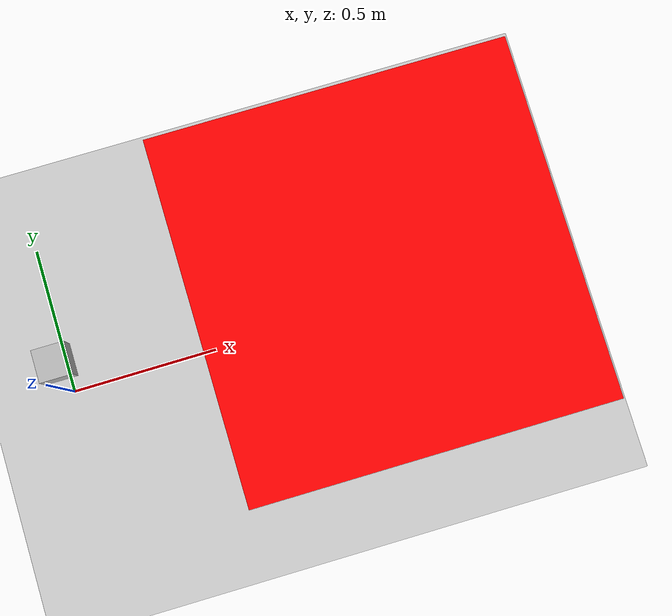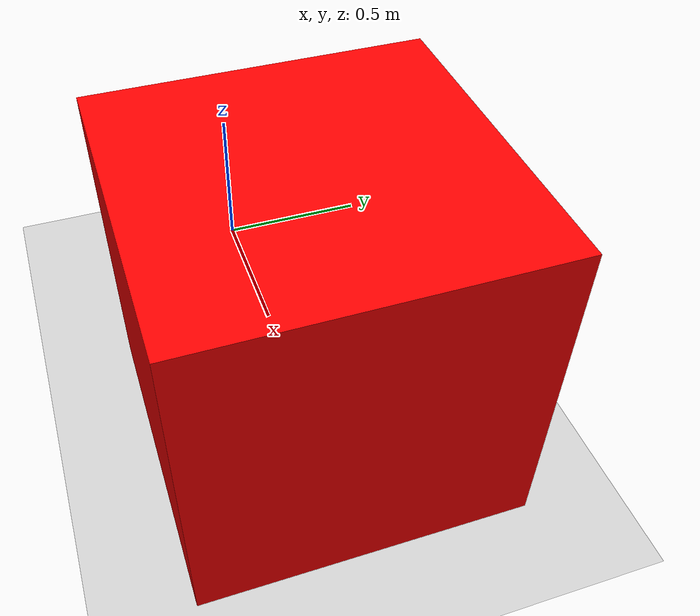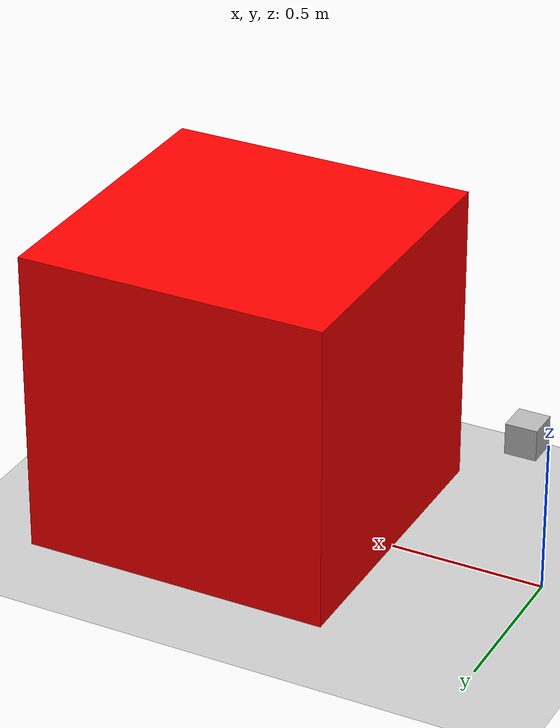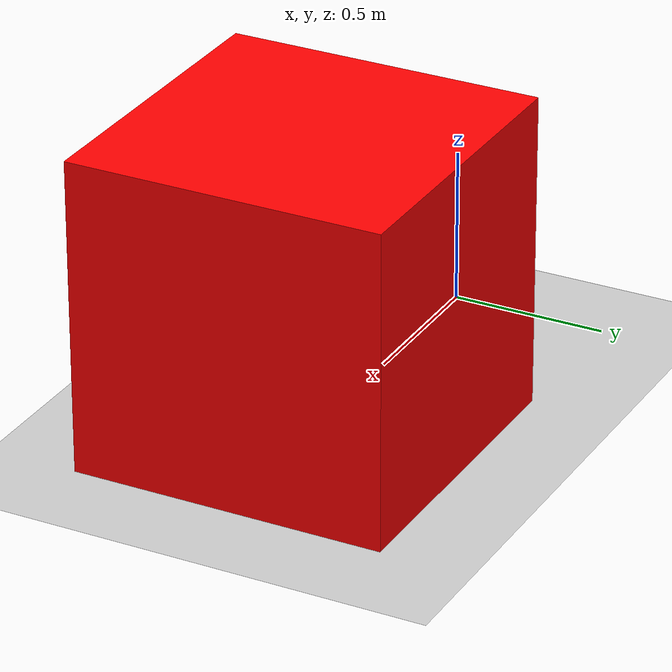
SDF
<?xml version="1.0" ?>
<!--
  Note: For now, this file must be loaded from ign-gazebo's root folder so the
  mesh's relative path is correct.
-->
<sdf version="1.9">
  <world name="gpu_lidar_sensor">
    <physics name="1ms" type="ode">
      <max_step_size>0.001</max_step_size>
      <real_time_factor>0</real_time_factor>
    </physics>
    <plugin
      filename="ignition-gazebo-physics-system"
      name="ignition::gazebo::systems::Physics">
    </plugin>
    <plugin
      filename="ignition-gazebo-sensors-system"
      name="ignition::gazebo::systems::Sensors">
      <render_engine>ogre2</render_engine>
    </plugin>
    <light type="directional" name="sun">
      <cast_shadows>true</cast_shadows>
      <pose>0 0 10 0 0 0</pose>
      <diffuse>0.8 0.8 0.8 1</diffuse>
      <specular>0.2 0.2 0.2 1</specular>
      <attenuation>
        <range>1000</range>
        <constant>0.9</constant>
        <linear>0.01</linear>
        <quadratic>0.001</quadratic>
      </attenuation>
      <direction>-0.5 0.1 -0.9</direction>
    </light>

    <model name="ground_plane">
      <static>true</static>
      <link name="link">
        <collision name="collision">
          <geometry>
            <box>
              <size>20 20 0.1</size>
            </box>
          </geometry>
        </collision>
        <visual name="visual">
          <geometry>
            <plane>
              <normal>0 0 1</normal>
              <size>100 100</size>
            </plane>
          </geometry>
          <material>
            <ambient>0.8 0.8 0.8 1</ambient>
            <diffuse>0.8 0.8 0.8 1</diffuse>
            <specular>0.8 0.8 0.8 1</specular>
          </material>
        </visual>
      </link>
    </model>

    <model name="box">
      <pose>1 0 0.5 0 0 0</pose>
      <link name="box_link">
        <inertial>
          <inertia>
            <ixx>1</ixx>
            <ixy>0</ixy>
            <ixz>0</ixz>
            <iyy>1</iyy>
            <iyz>0</iyz>
            <izz>1</izz>
          </inertia>
          <mass>1.0</mass>
        </inertial>
        <collision name="box_collision">
          <geometry>
            <box>
              <size>1 1 1</size>
            </box>
          </geometry>
        </collision>

        <visual name="box_visual">
          <geometry>
            <box>
              <size>1 1 1</size>
            </box>
          </geometry>
          <material>
            <ambient>1 0 0 1</ambient>
            <diffuse>1 0 0 1</diffuse>
            <specular>1 0 0 1</specular>
          </material>
        </visual>
      </link>
    </model>

    <model name="gpu_lidar">
        <plugin filename="/movai_ign_plugins/libMovaiLidar.so" name="ignition::gazebo::systems::MovaiLidar">
        <cam_topic_name>something</cam_topic_name>
        </plugin>
      <pose>0 0 0.5 0 0 0.0 </pose>
      <link name="gpu_lidar_link">
        <pose>0.05 0.05 0.05 0 0 0</pose>
        <inertial>
          <mass>0.1</mass>
          <inertia>
            <ixx>0.000166667</ixx>
            <iyy>0.000166667</iyy>
            <izz>0.000166667</izz>
          </inertia>
        </inertial>
        <collision name="collision">
          <geometry>
            <box>
              <size>0.1 0.1 0.1</size>
            </box>
          </geometry>
        </collision>
        <visual name="visual">
          <geometry>
            <box>
              <size>0.1 0.1 0.1</size>
            </box>
          </geometry>
        </visual>
        <sensor name="scan_omni" type="gpu_lidar">
            <topic>lidar</topic>
            <update_rate>10</update_rate>
            <always_on>1</always_on>
            <lidar>
             <scan>
                <horizontal>
                    <!-- Real samples value is 1800 -->
                    <samples>2048</samples>
                    <resolution>1</resolution>
                    <min_angle>-3.141592654</min_angle>
                    <max_angle>3.141592654</max_angle>
                </horizontal>
                <vertical>
                    <samples>16</samples>
                    <resolution>1</resolution>
                    <min_angle>-0.261799388</min_angle>
                    <max_angle>0.261799388</max_angle>
                </vertical>
             </scan>
             <range>
                <min>0.2</min>
                <max>100.0</max>
                <resolution>0.01</resolution>
             </range>
            </lidar>
      </sensor>
      <sensor name="camera_front_right" type="camera">
        <pose>0.0 0 0.0 0 0 -0.7854</pose>
        <update_rate>2</update_rate>
        <always_on>1</always_on>
        <ignition_frame_id>scan_omni</ignition_frame_id>
        <camera>
          <horizontal_fov>1.59</horizontal_fov>
          <image>
            <width>512</width>
            <height>200</height>
          </image>
          <clip>
            <near>0.05</near>
            <far>200</far>
          </clip>
        </camera>
      </sensor>
      <sensor name="camera_front_left" type="camera">
        <pose>0.0 0 0.0 0 0 0.7854</pose>
        <update_rate>2</update_rate>
        <always_on>1</always_on>
        <ignition_frame_id>scan_omni</ignition_frame_id>
        <camera>
          <horizontal_fov>1.59</horizontal_fov>
          <image>
            <width>512</width>
            <height>200</height>
          </image>
          <clip>
            <near>0.05</near>
            <far>200</far>
          </clip>
        </camera>
      </sensor>
      <sensor name="camera_back_right" type="camera">
        <pose>0.0 0 0.0 0 0 -2.3562</pose>
        <update_rate>2</update_rate>
        <always_on>1</always_on>
        <ignition_frame_id>scan_omni</ignition_frame_id>
        <camera>
          <horizontal_fov>1.59</horizontal_fov>
          <image>
            <width>512</width>
            <height>200</height>
          </image>
          <clip>
            <near>0.05</near>
            <far>200</far>
          </clip>
        </camera>
      </sensor>
      <sensor name="camera_back_left" type="camera">
        <pose>0.0 0 0.0 0 0 2.3562</pose>
        <update_rate>2</update_rate>
        <always_on>1</always_on>
        <ignition_frame_id>scan_omni</ignition_frame_id>
        <camera>
          <horizontal_fov>1.59</horizontal_fov>
          <image>
            <width>512</width>
            <height>200</height>
          </image>
          <clip>
            <near>0.05</near>
            <far>200</far>
          </clip>
        </camera>
      </sensor>
     </link>
      <static>true</static>
    </model>
  </world>
</sdf>
